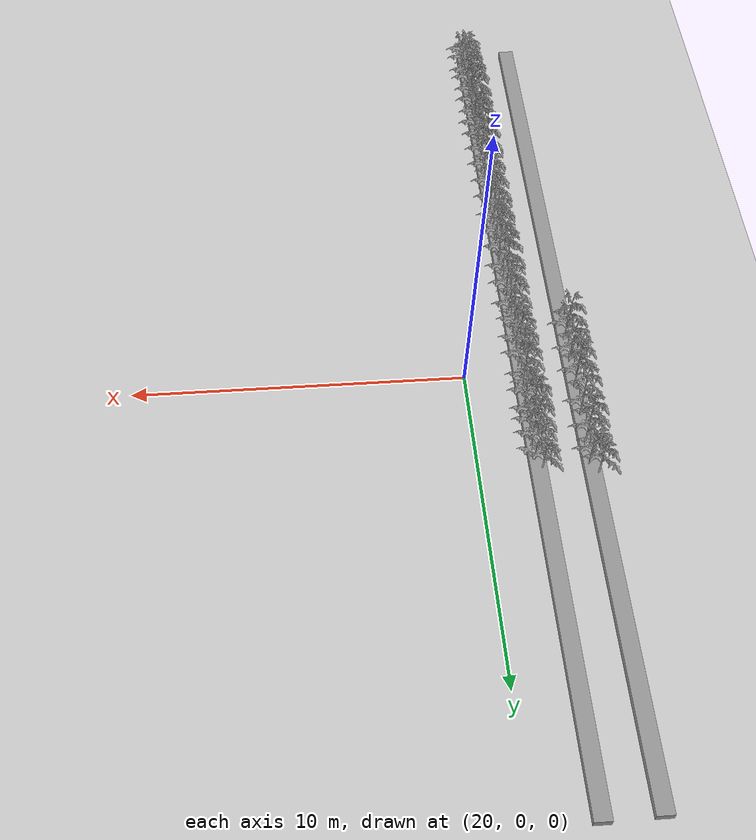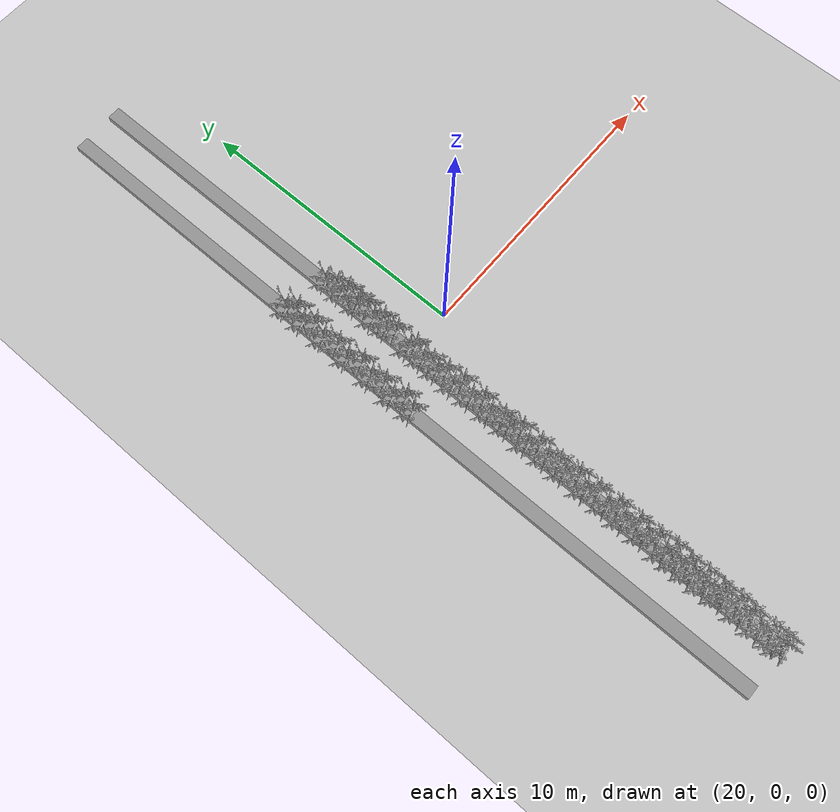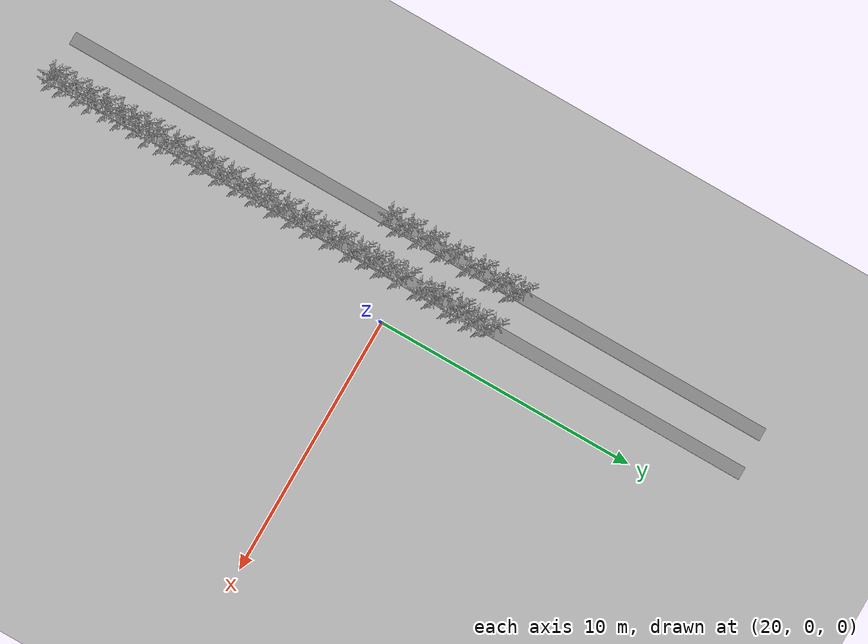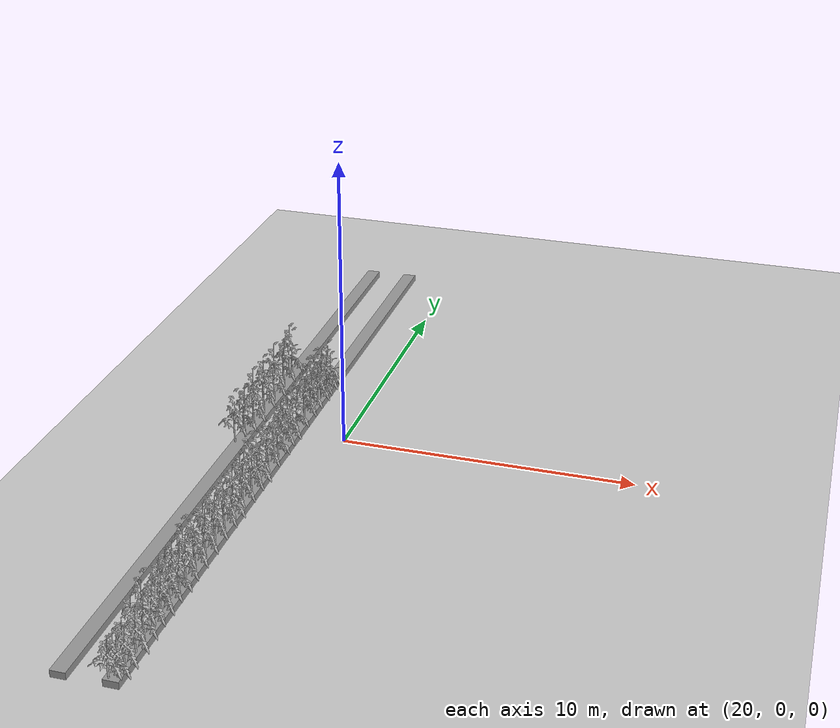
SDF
<sdf version="1.6">
 <world name="default">
  <model name="ground_plane">
   <static>1</static>
   <link name="link">
    <collision name="collision">
     <geometry><plane><normal>0 0 1</normal><size>100 100</size></plane></geometry>
     <surface>
      <contact><collide_bitmask>65535</collide_bitmask></contact>
      <friction><ode><mu>100</mu><mu2>50</mu2></ode></friction>
     </surface>
    </collision>
    <visual name="visual">
     <cast_shadows>0</cast_shadows>
     <geometry><plane><normal>0 0 1</normal><size>100 100</size></plane></geometry>
     <material>
      <script><uri>file://media/materials/scripts/gazebo.material</uri><name>Gazebo/Grey</name></script>
     </material>
    </visual>
   </link>
  </model>
  <model name="plant_base_clone_clone_0_clone">
   <link name="link">
    <inertial>
     <mass>1</mass>
     <inertia>
      <ixx>0.166667</ixx>
      <ixy>0</ixy>
      <ixz>0</ixz>
      <iyy>0.166667</iyy>
      <iyz>0</iyz>
      <izz>0.166667</izz>
     </inertia>
    </inertial>
    <visual name="visual">
     <geometry><box><size>0.484753 27.8593 0.235695</size></box></geometry>
     <material>
      <script><name>Gazebo/Grey</name><uri>file://media/materials/scripts/gazebo.material</uri></script>
     </material>
    </visual>
    <collision name="collision">
     <geometry><box><size>0.484753 27.8593 0.235695</size></box></geometry>
     <surface>
      <friction>
       <ode><mu>1</mu><mu2>1</mu2><fdir1>0 0 0</fdir1><slip1>0</slip1><slip2>0</slip2></ode>
       <torsional>
        <coefficient>1</coefficient>
        <patch_radius>0</patch_radius>
        <surface_radius>0</surface_radius>
        <use_patch_radius>1</use_patch_radius>
        <ode><slip>0</slip></ode>
       </torsional>
      </friction>
      <bounce><restitution_coefficient>0</restitution_coefficient><threshold>1e+06</threshold></bounce>
      <contact>
       <collide_without_contact>0</collide_without_contact>
       <collide_without_contact_bitmask>1</collide_without_contact_bitmask>
       <collide_bitmask>1</collide_bitmask>
       <ode>
        <soft_cfm>0</soft_cfm>
        <soft_erp>0.2</soft_erp>
        <kp>1e+13</kp>
        <kd>1</kd>
        <max_vel>0.01</max_vel>
        <min_depth>0</min_depth>
       </ode>
       <bullet>
        <split_impulse>1</split_impulse>
        <split_impulse_penetration_threshold>-0.01</split_impulse_penetration_threshold>
        <soft_cfm>0</soft_cfm>
        <soft_erp>0.2</soft_erp>
        <kp>1e+13</kp>
        <kd>1</kd>
       </bullet>
      </contact>
     </surface>
    </collision>
   </link>
   <static>1</static>
   <pose>16.7542 -0.411562 0.134309 0 -0 0</pose>
  </model>
  <model name="tomato_plant_big_28">
   <static>1</static>
   <link name="link">
    <collision name="collision">
     <geometry>
      <mesh><scale>5e-06 5e-06 6e-06</scale><uri>model://tomato_plant_big/meshes/tomato-plant.dae</uri></mesh>
     </geometry>
    </collision>
    <visual name="visual">
     <geometry>
      <mesh><scale>5e-06 5e-06 7e-06</scale><uri>model://tomato_plant_big/meshes/tomato-plant.dae</uri></mesh>
     </geometry>
    </visual>
   </link>
   <pose>16.6302 3.69515 0 0 -0 0</pose>
  </model>
  <model name="tomato_plant_big_29">
   <static>1</static>
   <link name="link">
    <collision name="collision">
     <geometry>
      <mesh><scale>5e-06 5e-06 6e-06</scale><uri>model://tomato_plant_big/meshes/tomato-plant.dae</uri></mesh>
     </geometry>
    </collision>
    <visual name="visual">
     <geometry>
      <mesh><scale>5e-06 5e-06 7e-06</scale><uri>model://tomato_plant_big/meshes/tomato-plant.dae</uri></mesh>
     </geometry>
    </visual>
   </link>
   <pose>16.8595 3.39617 0 0 -0 0</pose>
  </model>
  <model name="tomato_plant_medium_28">
   <static>1</static>
   <link name="link">
    <collision name="collision">
     <geometry>
      <mesh><scale>5e-06 5e-06 6e-06</scale><uri>model://tomato_plant_medium/meshes/tomato-plant.dae</uri></mesh>
     </geometry>
    </collision>
    <visual name="visual">
     <geometry>
      <mesh><scale>5e-06 5e-06 6e-06</scale><uri>model://tomato_plant_medium/meshes/tomato-plant.dae</uri></mesh>
     </geometry>
    </visual>
   </link>
   <pose>16.6557 3.03767 0 0 -0 0</pose>
  </model>
  <model name="tomato_plant_big_30">
   <static>1</static>
   <link name="link">
    <collision name="collision">
     <geometry>
      <mesh><scale>5e-06 5e-06 6e-06</scale><uri>model://tomato_plant_big/meshes/tomato-plant.dae</uri></mesh>
     </geometry>
    </collision>
    <visual name="visual">
     <geometry>
      <mesh><scale>5e-06 5e-06 7e-06</scale><uri>model://tomato_plant_big/meshes/tomato-plant.dae</uri></mesh>
     </geometry>
    </visual>
   </link>
   <pose>16.8343 2.6317 0 0 -0 0</pose>
  </model>
  <model name="tomato_plant_big_31">
   <static>1</static>
   <link name="link">
    <collision name="collision">
     <geometry>
      <mesh><scale>5e-06 5e-06 6e-06</scale><uri>model://tomato_plant_big/meshes/tomato-plant.dae</uri></mesh>
     </geometry>
    </collision>
    <visual name="visual">
     <geometry>
      <mesh><scale>5e-06 5e-06 7e-06</scale><uri>model://tomato_plant_big/meshes/tomato-plant.dae</uri></mesh>
     </geometry>
    </visual>
   </link>
   <pose>16.6389 2.11003 0 0 -0 0</pose>
  </model>
  <model name="tomato_plant_medium_29">
   <static>1</static>
   <link name="link">
    <collision name="collision">
     <geometry>
      <mesh><scale>5e-06 5e-06 6e-06</scale><uri>model://tomato_plant_medium/meshes/tomato-plant.dae</uri></mesh>
     </geometry>
    </collision>
    <visual name="visual">
     <geometry>
      <mesh><scale>5e-06 5e-06 6e-06</scale><uri>model://tomato_plant_medium/meshes/tomato-plant.dae</uri></mesh>
     </geometry>
    </visual>
   </link>
   <pose>16.8288 1.66908 0 0 -0 0</pose>
  </model>
  <model name="tomato_plant_big_32">
   <static>1</static>
   <link name="link">
    <collision name="collision">
     <geometry>
      <mesh><scale>5e-06 5e-06 6e-06</scale><uri>model://tomato_plant_big/meshes/tomato-plant.dae</uri></mesh>
     </geometry>
    </collision>
    <visual name="visual">
     <geometry>
      <mesh><scale>5e-06 5e-06 7e-06</scale><uri>model://tomato_plant_big/meshes/tomato-plant.dae</uri></mesh>
     </geometry>
    </visual>
   </link>
   <pose>16.6395 1.11249 0 0 -0 0</pose>
  </model>
  <model name="tomato_plant_big_33">
   <static>1</static>
   <link name="link">
    <collision name="collision">
     <geometry>
      <mesh><scale>5e-06 5e-06 6e-06</scale><uri>model://tomato_plant_big/meshes/tomato-plant.dae</uri></mesh>
     </geometry>
    </collision>
    <visual name="visual">
     <geometry>
      <mesh><scale>5e-06 5e-06 7e-06</scale><uri>model://tomato_plant_big/meshes/tomato-plant.dae</uri></mesh>
     </geometry>
    </visual>
   </link>
   <pose>16.8267 0.645431 0 0 -0 0</pose>
  </model>
  <model name="tomato_plant_big_34">
   <static>1</static>
   <link name="link">
    <collision name="collision">
     <geometry>
      <mesh><scale>5e-06 5e-06 6e-06</scale><uri>model://tomato_plant_big/meshes/tomato-plant.dae</uri></mesh>
     </geometry>
    </collision>
    <visual name="visual">
     <geometry>
      <mesh><scale>5e-06 5e-06 7e-06</scale><uri>model://tomato_plant_big/meshes/tomato-plant.dae</uri></mesh>
     </geometry>
    </visual>
   </link>
   <pose>16.636 0.127232 0 0 -0 0</pose>
  </model>
  <model name="tomato_plant_medium_30">
   <static>1</static>
   <link name="link">
    <collision name="collision">
     <geometry>
      <mesh><scale>5e-06 5e-06 6e-06</scale><uri>model://tomato_plant_medium/meshes/tomato-plant.dae</uri></mesh>
     </geometry>
    </collision>
    <visual name="visual">
     <geometry>
      <mesh><scale>5e-06 5e-06 6e-06</scale><uri>model://tomato_plant_medium/meshes/tomato-plant.dae</uri></mesh>
     </geometry>
    </visual>
   </link>
   <pose>16.8214 -0.274519 0 0 -0 0</pose>
  </model>
  <model name="tomato_plant_medium_31">
   <static>1</static>
   <link name="link">
    <collision name="collision">
     <geometry>
      <mesh><scale>5e-06 5e-06 6e-06</scale><uri>model://tomato_plant_medium/meshes/tomato-plant.dae</uri></mesh>
     </geometry>
    </collision>
    <visual name="visual">
     <geometry>
      <mesh><scale>5e-06 5e-06 6e-06</scale><uri>model://tomato_plant_medium/meshes/tomato-plant.dae</uri></mesh>
     </geometry>
    </visual>
   </link>
   <pose>16.6311 -0.74991 0 0 -0 0</pose>
  </model>
  <model name="tomato_plant_big_35">
   <static>1</static>
   <link name="link">
    <collision name="collision">
     <geometry>
      <mesh><scale>5e-06 5e-06 6e-06</scale><uri>model://tomato_plant_big/meshes/tomato-plant.dae</uri></mesh>
     </geometry>
    </collision>
    <visual name="visual">
     <geometry>
      <mesh><scale>5e-06 5e-06 7e-06</scale><uri>model://tomato_plant_big/meshes/tomato-plant.dae</uri></mesh>
     </geometry>
    </visual>
   </link>
   <pose>16.8316 -1.12586 0 0 -0 0</pose>
  </model>
  <model name="tomato_plant_big_36">
   <static>1</static>
   <link name="link">
    <collision name="collision">
     <geometry>
      <mesh><scale>5e-06 5e-06 6e-06</scale><uri>model://tomato_plant_big/meshes/tomato-plant.dae</uri></mesh>
     </geometry>
    </collision>
    <visual name="visual">
     <geometry>
      <mesh><scale>5e-06 5e-06 7e-06</scale><uri>model://tomato_plant_big/meshes/tomato-plant.dae</uri></mesh>
     </geometry>
    </visual>
   </link>
   <pose>16.6424 -1.55478 0 0 -0 0</pose>
  </model>
  <model name="plant_base_clone_clone_0_clone_clone">
   <link name="link">
    <inertial>
     <mass>1</mass>
     <inertia>
      <ixx>0.166667</ixx>
      <ixy>0</ixy>
      <ixz>0</ixz>
      <iyy>0.166667</iyy>
      <iyz>0</iyz>
      <izz>0.166667</izz>
     </inertia>
    </inertial>
    <visual name="visual">
     <geometry><box><size>0.484753 27.8593 0.235695</size></box></geometry>
     <material>
      <script><name>Gazebo/Grey</name><uri>file://media/materials/scripts/gazebo.material</uri></script>
     </material>
    </visual>
    <collision name="collision">
     <geometry><box><size>0.484753 27.8593 0.235695</size></box></geometry>
     <surface>
      <friction>
       <ode><mu>1</mu><mu2>1</mu2><fdir1>0 0 0</fdir1><slip1>0</slip1><slip2>0</slip2></ode>
       <torsional>
        <coefficient>1</coefficient>
        <patch_radius>0</patch_radius>
        <surface_radius>0</surface_radius>
        <use_patch_radius>1</use_patch_radius>
        <ode><slip>0</slip></ode>
       </torsional>
      </friction>
      <bounce><restitution_coefficient>0</restitution_coefficient><threshold>1e+06</threshold></bounce>
      <contact>
       <collide_without_contact>0</collide_without_contact>
       <collide_without_contact_bitmask>1</collide_without_contact_bitmask>
       <collide_bitmask>1</collide_bitmask>
       <ode>
        <soft_cfm>0</soft_cfm>
        <soft_erp>0.2</soft_erp>
        <kp>1e+13</kp>
        <kd>1</kd>
        <max_vel>0.01</max_vel>
        <min_depth>0</min_depth>
       </ode>
       <bullet>
        <split_impulse>1</split_impulse>
        <split_impulse_penetration_threshold>-0.01</split_impulse_penetration_threshold>
        <soft_cfm>0</soft_cfm>
        <soft_erp>0.2</soft_erp>
        <kp>1e+13</kp>
        <kd>1</kd>
       </bullet>
      </contact>
     </surface>
    </collision>
   </link>
   <static>1</static>
   <pose>18.2947 -0.361854 0.134309 0 -0 0</pose>
  </model>
  <model name="tomato_plant_medium_36">
   <static>1</static>
   <link name="link">
    <collision name="collision">
     <geometry>
      <mesh><scale>5e-06 5e-06 6e-06</scale><uri>model://tomato_plant_medium/meshes/tomato-plant.dae</uri></mesh>
     </geometry>
    </collision>
    <visual name="visual">
     <geometry>
      <mesh><scale>5e-06 5e-06 6e-06</scale><uri>model://tomato_plant_medium/meshes/tomato-plant.dae</uri></mesh>
     </geometry>
    </visual>
   </link>
   <pose>18.203 3.43071 0 0 -0 0</pose>
  </model>
  <model name="tomato_plant_small_12">
   <static>1</static>
   <link name="link">
    <collision name="collision">
     <geometry>
      <mesh><scale>5e-06 5e-06 5e-06</scale><uri>model://tomato_plant_small/meshes/tomato-plant.dae</uri></mesh>
     </geometry>
    </collision>
    <visual name="visual">
     <geometry>
      <mesh><scale>5e-06 5e-06 5e-06</scale><uri>model://tomato_plant_small/meshes/tomato-plant.dae</uri></mesh>
     </geometry>
    </visual>
   </link>
   <pose>18.3881 3.14602 0 0 -0 0</pose>
  </model>
  <model name="tomato_plant_medium_37">
   <static>1</static>
   <link name="link">
    <collision name="collision">
     <geometry>
      <mesh><scale>5e-06 5e-06 6e-06</scale><uri>model://tomato_plant_medium/meshes/tomato-plant.dae</uri></mesh>
     </geometry>
    </collision>
    <visual name="visual">
     <geometry>
      <mesh><scale>5e-06 5e-06 6e-06</scale><uri>model://tomato_plant_medium/meshes/tomato-plant.dae</uri></mesh>
     </geometry>
    </visual>
   </link>
   <pose>18.2039 2.78617 0 0 -0 0</pose>
  </model>
  <model name="tomato_plant_medium_38">
   <static>1</static>
   <link name="link">
    <collision name="collision">
     <geometry>
      <mesh><scale>5e-06 5e-06 6e-06</scale><uri>model://tomato_plant_medium/meshes/tomato-plant.dae</uri></mesh>
     </geometry>
    </collision>
    <visual name="visual">
     <geometry>
      <mesh><scale>5e-06 5e-06 6e-06</scale><uri>model://tomato_plant_medium/meshes/tomato-plant.dae</uri></mesh>
     </geometry>
    </visual>
   </link>
   <pose>18.4156 2.66617 0 0 -0 0</pose>
  </model>
  <model name="tomato_plant_big_39">
   <static>1</static>
   <link name="link">
    <collision name="collision">
     <geometry>
      <mesh><scale>5e-06 5e-06 6e-06</scale><uri>model://tomato_plant_big/meshes/tomato-plant.dae</uri></mesh>
     </geometry>
    </collision>
    <visual name="visual">
     <geometry>
      <mesh><scale>5e-06 5e-06 7e-06</scale><uri>model://tomato_plant_big/meshes/tomato-plant.dae</uri></mesh>
     </geometry>
    </visual>
   </link>
   <pose>18.1812 2.07186 0 0 -0 0</pose>
  </model>
  <model name="tomato_plant_medium_39">
   <static>1</static>
   <link name="link">
    <collision name="collision">
     <geometry>
      <mesh><scale>5e-06 5e-06 6e-06</scale><uri>model://tomato_plant_medium/meshes/tomato-plant.dae</uri></mesh>
     </geometry>
    </collision>
    <visual name="visual">
     <geometry>
      <mesh><scale>5e-06 5e-06 6e-06</scale><uri>model://tomato_plant_medium/meshes/tomato-plant.dae</uri></mesh>
     </geometry>
    </visual>
   </link>
   <pose>18.3933 2.19028 0 0 -0 0</pose>
  </model>
  <model name="tomato_plant_medium_40">
   <static>1</static>
   <link name="link">
    <collision name="collision">
     <geometry>
      <mesh><scale>5e-06 5e-06 6e-06</scale><uri>model://tomato_plant_medium/meshes/tomato-plant.dae</uri></mesh>
     </geometry>
    </collision>
    <visual name="visual">
     <geometry>
      <mesh><scale>5e-06 5e-06 6e-06</scale><uri>model://tomato_plant_medium/meshes/tomato-plant.dae</uri></mesh>
     </geometry>
    </visual>
   </link>
   <pose>18.4111 1.81347 0 0 -0 0</pose>
  </model>
  <model name="tomato_plant_big_40">
   <static>1</static>
   <link name="link">
    <collision name="collision">
     <geometry>
      <mesh><scale>5e-06 5e-06 6e-06</scale><uri>model://tomato_plant_big/meshes/tomato-plant.dae</uri></mesh>
     </geometry>
    </collision>
    <visual name="visual">
     <geometry>
      <mesh><scale>5e-06 5e-06 7e-06</scale><uri>model://tomato_plant_big/meshes/tomato-plant.dae</uri></mesh>
     </geometry>
    </visual>
   </link>
   <pose>18.1522 1.36288 0 0 -0 0</pose>
  </model>
  <model name="tomato_plant_medium_41">
   <static>1</static>
   <link name="link">
    <collision name="collision">
     <geometry>
      <mesh><scale>5e-06 5e-06 6e-06</scale><uri>model://tomato_plant_medium/meshes/tomato-plant.dae</uri></mesh>
     </geometry>
    </collision>
    <visual name="visual">
     <geometry>
      <mesh><scale>5e-06 5e-06 6e-06</scale><uri>model://tomato_plant_medium/meshes/tomato-plant.dae</uri></mesh>
     </geometry>
    </visual>
   </link>
   <pose>18.3908 1.1661 0 0 -0 0</pose>
  </model>
  <model name="tomato_plant_medium_42">
   <static>1</static>
   <link name="link">
    <collision name="collision">
     <geometry>
      <mesh><scale>5e-06 5e-06 6e-06</scale><uri>model://tomato_plant_medium/meshes/tomato-plant.dae</uri></mesh>
     </geometry>
    </collision>
    <visual name="visual">
     <geometry>
      <mesh><scale>5e-06 5e-06 6e-06</scale><uri>model://tomato_plant_medium/meshes/tomato-plant.dae</uri></mesh>
     </geometry>
    </visual>
   </link>
   <pose>18.2419 0.881435 0 0 -0 0</pose>
  </model>
  <model name="tomato_plant_medium_43">
   <static>1</static>
   <link name="link">
    <collision name="collision">
     <geometry>
      <mesh><scale>5e-06 5e-06 6e-06</scale><uri>model://tomato_plant_medium/meshes/tomato-plant.dae</uri></mesh>
     </geometry>
    </collision>
    <visual name="visual">
     <geometry>
      <mesh><scale>5e-06 5e-06 6e-06</scale><uri>model://tomato_plant_medium/meshes/tomato-plant.dae</uri></mesh>
     </geometry>
    </visual>
   </link>
   <pose>18.3636 0.581403 0 0 -0 0</pose>
  </model>
  <model name="tomato_plant_medium_44">
   <static>1</static>
   <link name="link">
    <collision name="collision">
     <geometry>
      <mesh><scale>5e-06 5e-06 6e-06</scale><uri>model://tomato_plant_medium/meshes/tomato-plant.dae</uri></mesh>
     </geometry>
    </collision>
    <visual name="visual">
     <geometry>
      <mesh><scale>5e-06 5e-06 6e-06</scale><uri>model://tomato_plant_medium/meshes/tomato-plant.dae</uri></mesh>
     </geometry>
    </visual>
   </link>
   <pose>18.1724 -0.08934 0 0 -0 0</pose>
  </model>
  <model name="tomato_plant_medium_45">
   <static>1</static>
   <link name="link">
    <collision name="collision">
     <geometry>
      <mesh><scale>5e-06 5e-06 6e-06</scale><uri>model://tomato_plant_medium/meshes/tomato-plant.dae</uri></mesh>
     </geometry>
    </collision>
    <visual name="visual">
     <geometry>
      <mesh><scale>5e-06 5e-06 6e-06</scale><uri>model://tomato_plant_medium/meshes/tomato-plant.dae</uri></mesh>
     </geometry>
    </visual>
   </link>
   <pose>18.3746 -0.203796 0 0 -0 0</pose>
  </model>
  <model name="tomato_plant_medium_46">
   <static>1</static>
   <link name="link">
    <collision name="collision">
     <geometry>
      <mesh><scale>5e-06 5e-06 6e-06</scale><uri>model://tomato_plant_medium/meshes/tomato-plant.dae</uri></mesh>
     </geometry>
    </collision>
    <visual name="visual">
     <geometry>
      <mesh><scale>5e-06 5e-06 6e-06</scale><uri>model://tomato_plant_medium/meshes/tomato-plant.dae</uri></mesh>
     </geometry>
    </visual>
   </link>
   <pose>18.1923 -0.664019 0 0 -0 0</pose>
  </model>
  <model name="tomato_plant_small_13">
   <static>1</static>
   <link name="link">
    <collision name="collision">
     <geometry>
      <mesh><scale>5e-06 5e-06 5e-06</scale><uri>model://tomato_plant_small/meshes/tomato-plant.dae</uri></mesh>
     </geometry>
    </collision>
    <visual name="visual">
     <geometry>
      <mesh><scale>5e-06 5e-06 5e-06</scale><uri>model://tomato_plant_small/meshes/tomato-plant.dae</uri></mesh>
     </geometry>
    </visual>
   </link>
   <pose>18.3563 -0.904807 0 0 -0 0</pose>
  </model>
  <model name="tomato_plant_medium_47">
   <static>1</static>
   <link name="link">
    <collision name="collision">
     <geometry>
      <mesh><scale>5e-06 5e-06 6e-06</scale><uri>model://tomato_plant_medium/meshes/tomato-plant.dae</uri></mesh>
     </geometry>
    </collision>
    <visual name="visual">
     <geometry>
      <mesh><scale>5e-06 5e-06 6e-06</scale><uri>model://tomato_plant_medium/meshes/tomato-plant.dae</uri></mesh>
     </geometry>
    </visual>
   </link>
   <pose>18.1771 -1.24651 0 0 -0 0</pose>
  </model>
  <model name="tomato_plant_medium_48">
   <static>1</static>
   <link name="link">
    <collision name="collision">
     <geometry>
      <mesh><scale>5e-06 5e-06 6e-06</scale><uri>model://tomato_plant_medium/meshes/tomato-plant.dae</uri></mesh>
     </geometry>
    </collision>
    <visual name="visual">
     <geometry>
      <mesh><scale>5e-06 5e-06 6e-06</scale><uri>model://tomato_plant_medium/meshes/tomato-plant.dae</uri></mesh>
     </geometry>
    </visual>
   </link>
   <pose>18.3478 -1.51642 0 0 -0 0</pose>
  </model>
  <model name="tomato_plant_small_14">
   <static>1</static>
   <link name="link">
    <collision name="collision">
     <geometry>
      <mesh><scale>5e-06 5e-06 5e-06</scale><uri>model://tomato_plant_small/meshes/tomato-plant.dae</uri></mesh>
     </geometry>
    </collision>
    <visual name="visual">
     <geometry>
      <mesh><scale>5e-06 5e-06 5e-06</scale><uri>model://tomato_plant_small/meshes/tomato-plant.dae</uri></mesh>
     </geometry>
    </visual>
   </link>
   <pose>18.1795 -1.89966 0 0 -0 0</pose>
  </model>
  <model name="tomato_plant_medium_49">
   <static>1</static>
   <link name="link">
    <collision name="collision">
     <geometry>
      <mesh><scale>5e-06 5e-06 6e-06</scale><uri>model://tomato_plant_medium/meshes/tomato-plant.dae</uri></mesh>
     </geometry>
    </collision>
    <visual name="visual">
     <geometry>
      <mesh><scale>5e-06 5e-06 6e-06</scale><uri>model://tomato_plant_medium/meshes/tomato-plant.dae</uri></mesh>
     </geometry>
    </visual>
   </link>
   <pose>18.4115 -2.1167 0 0 -0 0</pose>
  </model>
  <model name="tomato_plant_medium_50">
   <static>1</static>
   <link name="link">
    <collision name="collision">
     <geometry>
      <mesh><scale>5e-06 5e-06 6e-06</scale><uri>model://tomato_plant_medium/meshes/tomato-plant.dae</uri></mesh>
     </geometry>
    </collision>
    <visual name="visual">
     <geometry>
      <mesh><scale>5e-06 5e-06 6e-06</scale><uri>model://tomato_plant_medium/meshes/tomato-plant.dae</uri></mesh>
     </geometry>
    </visual>
   </link>
   <pose>18.187 -2.61324 0 0 -0 0</pose>
  </model>
  <model name="tomato_plant_medium_51">
   <static>1</static>
   <link name="link">
    <collision name="collision">
     <geometry>
      <mesh><scale>5e-06 5e-06 6e-06</scale><uri>model://tomato_plant_medium/meshes/tomato-plant.dae</uri></mesh>
     </geometry>
    </collision>
    <visual name="visual">
     <geometry>
      <mesh><scale>5e-06 5e-06 6e-06</scale><uri>model://tomato_plant_medium/meshes/tomato-plant.dae</uri></mesh>
     </geometry>
    </visual>
   </link>
   <pose>18.3839 -2.95565 0 0 -0 0</pose>
  </model>
  <model name="tomato_plant_medium_52">
   <static>1</static>
   <link name="link">
    <collision name="collision">
     <geometry>
      <mesh><scale>5e-06 5e-06 6e-06</scale><uri>model://tomato_plant_medium/meshes/tomato-plant.dae</uri></mesh>
     </geometry>
    </collision>
    <visual name="visual">
     <geometry>
      <mesh><scale>5e-06 5e-06 6e-06</scale><uri>model://tomato_plant_medium/meshes/tomato-plant.dae</uri></mesh>
     </geometry>
    </visual>
   </link>
   <pose>18.1875 -3.37366 0 0 -0 0</pose>
  </model>
  <model name="tomato_plant_small_15">
   <static>1</static>
   <link name="link">
    <collision name="collision">
     <geometry>
      <mesh><scale>5e-06 5e-06 5e-06</scale><uri>model://tomato_plant_small/meshes/tomato-plant.dae</uri></mesh>
     </geometry>
    </collision>
    <visual name="visual">
     <geometry>
      <mesh><scale>5e-06 5e-06 5e-06</scale><uri>model://tomato_plant_small/meshes/tomato-plant.dae</uri></mesh>
     </geometry>
    </visual>
   </link>
   <pose>18.3812 -3.75382 0 0 -0 0</pose>
  </model>
  <model name="tomato_plant_big_41">
   <static>1</static>
   <link name="link">
    <collision name="collision">
     <geometry>
      <mesh><scale>5e-06 5e-06 6e-06</scale><uri>model://tomato_plant_big/meshes/tomato-plant.dae</uri></mesh>
     </geometry>
    </collision>
    <visual name="visual">
     <geometry>
      <mesh><scale>5e-06 5e-06 7e-06</scale><uri>model://tomato_plant_big/meshes/tomato-plant.dae</uri></mesh>
     </geometry>
    </visual>
   </link>
   <pose>18.1765 -4.09846 0 0 -0 0</pose>
  </model>
  <model name="tomato_plant_medium_53">
   <static>1</static>
   <link name="link">
    <collision name="collision">
     <geometry>
      <mesh><scale>5e-06 5e-06 6e-06</scale><uri>model://tomato_plant_medium/meshes/tomato-plant.dae</uri></mesh>
     </geometry>
    </collision>
    <visual name="visual">
     <geometry>
      <mesh><scale>5e-06 5e-06 6e-06</scale><uri>model://tomato_plant_medium/meshes/tomato-plant.dae</uri></mesh>
     </geometry>
    </visual>
   </link>
   <pose>18.4013 -4.45258 0 0 -0 0</pose>
  </model>
  <model name="tomato_plant_medium_54">
   <static>1</static>
   <link name="link">
    <collision name="collision">
     <geometry>
      <mesh><scale>5e-06 5e-06 6e-06</scale><uri>model://tomato_plant_medium/meshes/tomato-plant.dae</uri></mesh>
     </geometry>
    </collision>
    <visual name="visual">
     <geometry>
      <mesh><scale>5e-06 5e-06 6e-06</scale><uri>model://tomato_plant_medium/meshes/tomato-plant.dae</uri></mesh>
     </geometry>
    </visual>
   </link>
   <pose>18.1616 -4.84131 0 0 -0 0</pose>
  </model>
  <model name="tomato_plant_medium_55">
   <static>1</static>
   <link name="link">
    <collision name="collision">
     <geometry>
      <mesh><scale>5e-06 5e-06 6e-06</scale><uri>model://tomato_plant_medium/meshes/tomato-plant.dae</uri></mesh>
     </geometry>
    </collision>
    <visual name="visual">
     <geometry>
      <mesh><scale>5e-06 5e-06 6e-06</scale><uri>model://tomato_plant_medium/meshes/tomato-plant.dae</uri></mesh>
     </geometry>
    </visual>
   </link>
   <pose>18.3872 -5.16005 0 0 -0 0</pose>
  </model>
  <model name="tomato_plant_medium_56">
   <static>1</static>
   <link name="link">
    <collision name="collision">
     <geometry>
      <mesh><scale>5e-06 5e-06 6e-06</scale><uri>model://tomato_plant_medium/meshes/tomato-plant.dae</uri></mesh>
     </geometry>
    </collision>
    <visual name="visual">
     <geometry>
      <mesh><scale>5e-06 5e-06 6e-06</scale><uri>model://tomato_plant_medium/meshes/tomato-plant.dae</uri></mesh>
     </geometry>
    </visual>
   </link>
   <pose>18.1986 -5.57139 0 0 -0 0</pose>
  </model>
  <model name="tomato_plant_small_16">
   <static>1</static>
   <link name="link">
    <collision name="collision">
     <geometry>
      <mesh><scale>5e-06 5e-06 5e-06</scale><uri>model://tomato_plant_small/meshes/tomato-plant.dae</uri></mesh>
     </geometry>
    </collision>
    <visual name="visual">
     <geometry>
      <mesh><scale>5e-06 5e-06 5e-06</scale><uri>model://tomato_plant_small/meshes/tomato-plant.dae</uri></mesh>
     </geometry>
    </visual>
   </link>
   <pose>18.3716 -5.95526 0 0 -0 0</pose>
  </model>
  <model name="tomato_plant_medium_57">
   <static>1</static>
   <link name="link">
    <collision name="collision">
     <geometry>
      <mesh><scale>5e-06 5e-06 6e-06</scale><uri>model://tomato_plant_medium/meshes/tomato-plant.dae</uri></mesh>
     </geometry>
    </collision>
    <visual name="visual">
     <geometry>
      <mesh><scale>5e-06 5e-06 6e-06</scale><uri>model://tomato_plant_medium/meshes/tomato-plant.dae</uri></mesh>
     </geometry>
    </visual>
   </link>
   <pose>18.1874 -6.24858 0 0 -0 0</pose>
  </model>
  <model name="tomato_plant_medium_58">
   <static>1</static>
   <link name="link">
    <collision name="collision">
     <geometry>
      <mesh><scale>5e-06 5e-06 6e-06</scale><uri>model://tomato_plant_medium/meshes/tomato-plant.dae</uri></mesh>
     </geometry>
    </collision>
    <visual name="visual">
     <geometry>
      <mesh><scale>5e-06 5e-06 6e-06</scale><uri>model://tomato_plant_medium/meshes/tomato-plant.dae</uri></mesh>
     </geometry>
    </visual>
   </link>
   <pose>18.3864 -6.65812 0 0 -0 0</pose>
  </model>
  <model name="tomato_plant_medium_59">
   <static>1</static>
   <link name="link">
    <collision name="collision">
     <geometry>
      <mesh><scale>5e-06 5e-06 6e-06</scale><uri>model://tomato_plant_medium/meshes/tomato-plant.dae</uri></mesh>
     </geometry>
    </collision>
    <visual name="visual">
     <geometry>
      <mesh><scale>5e-06 5e-06 6e-06</scale><uri>model://tomato_plant_medium/meshes/tomato-plant.dae</uri></mesh>
     </geometry>
    </visual>
   </link>
   <pose>18.1717 -7.06619 0 0 -0 0</pose>
  </model>
  <model name="tomato_plant_medium_60">
   <static>1</static>
   <link name="link">
    <collision name="collision">
     <geometry>
      <mesh><scale>5e-06 5e-06 6e-06</scale><uri>model://tomato_plant_medium/meshes/tomato-plant.dae</uri></mesh>
     </geometry>
    </collision>
    <visual name="visual">
     <geometry>
      <mesh><scale>5e-06 5e-06 6e-06</scale><uri>model://tomato_plant_medium/meshes/tomato-plant.dae</uri></mesh>
     </geometry>
    </visual>
   </link>
   <pose>18.3824 -7.38035 0 0 -0 0</pose>
  </model>
  <model name="tomato_plant_medium_61">
   <static>1</static>
   <link name="link">
    <collision name="collision">
     <geometry>
      <mesh><scale>5e-06 5e-06 6e-06</scale><uri>model://tomato_plant_medium/meshes/tomato-plant.dae</uri></mesh>
     </geometry>
    </collision>
    <visual name="visual">
     <geometry>
      <mesh><scale>5e-06 5e-06 6e-06</scale><uri>model://tomato_plant_medium/meshes/tomato-plant.dae</uri></mesh>
     </geometry>
    </visual>
   </link>
   <pose>18.1994 -7.83506 0 0 -0 0</pose>
  </model>
  <model name="tomato_plant_medium_62">
   <static>1</static>
   <link name="link">
    <collision name="collision">
     <geometry>
      <mesh><scale>5e-06 5e-06 6e-06</scale><uri>model://tomato_plant_medium/meshes/tomato-plant.dae</uri></mesh>
     </geometry>
    </collision>
    <visual name="visual">
     <geometry>
      <mesh><scale>5e-06 5e-06 6e-06</scale><uri>model://tomato_plant_medium/meshes/tomato-plant.dae</uri></mesh>
     </geometry>
    </visual>
   </link>
   <pose>18.4013 -8.15736 0 0 -0 0</pose>
  </model>
  <model name="tomato_plant_medium_63">
   <static>1</static>
   <link name="link">
    <collision name="collision">
     <geometry>
      <mesh><scale>5e-06 5e-06 6e-06</scale><uri>model://tomato_plant_medium/meshes/tomato-plant.dae</uri></mesh>
     </geometry>
    </collision>
    <visual name="visual">
     <geometry>
      <mesh><scale>5e-06 5e-06 6e-06</scale><uri>model://tomato_plant_medium/meshes/tomato-plant.dae</uri></mesh>
     </geometry>
    </visual>
   </link>
   <pose>18.1757 -8.48595 0 0 -0 0</pose>
  </model>
  <model name="tomato_plant_medium_64">
   <static>1</static>
   <link name="link">
    <collision name="collision">
     <geometry>
      <mesh><scale>5e-06 5e-06 6e-06</scale><uri>model://tomato_plant_medium/meshes/tomato-plant.dae</uri></mesh>
     </geometry>
    </collision>
    <visual name="visual">
     <geometry>
      <mesh><scale>5e-06 5e-06 6e-06</scale><uri>model://tomato_plant_medium/meshes/tomato-plant.dae</uri></mesh>
     </geometry>
    </visual>
   </link>
   <pose>18.3962 -8.89016 0 0 -0 0</pose>
  </model>
  <model name="tomato_plant_big_42">
   <static>1</static>
   <link name="link">
    <collision name="collision">
     <geometry>
      <mesh><scale>5e-06 5e-06 6e-06</scale><uri>model://tomato_plant_big/meshes/tomato-plant.dae</uri></mesh>
     </geometry>
    </collision>
    <visual name="visual">
     <geometry>
      <mesh><scale>5e-06 5e-06 7e-06</scale><uri>model://tomato_plant_big/meshes/tomato-plant.dae</uri></mesh>
     </geometry>
    </visual>
   </link>
   <pose>18.1735 -9.2315 0 0 -0 0</pose>
  </model>
  <model name="tomato_plant_medium_65">
   <static>1</static>
   <link name="link">
    <collision name="collision">
     <geometry>
      <mesh><scale>5e-06 5e-06 6e-06</scale><uri>model://tomato_plant_medium/meshes/tomato-plant.dae</uri></mesh>
     </geometry>
    </collision>
    <visual name="visual">
     <geometry>
      <mesh><scale>5e-06 5e-06 6e-06</scale><uri>model://tomato_plant_medium/meshes/tomato-plant.dae</uri></mesh>
     </geometry>
    </visual>
   </link>
   <pose>18.4084 -9.59475 0 0 -0 0</pose>
  </model>
  <model name="tomato_plant_medium_66">
   <static>1</static>
   <link name="link">
    <collision name="collision">
     <geometry>
      <mesh><scale>5e-06 5e-06 6e-06</scale><uri>model://tomato_plant_medium/meshes/tomato-plant.dae</uri></mesh>
     </geometry>
    </collision>
    <visual name="visual">
     <geometry>
      <mesh><scale>5e-06 5e-06 6e-06</scale><uri>model://tomato_plant_medium/meshes/tomato-plant.dae</uri></mesh>
     </geometry>
    </visual>
   </link>
   <pose>18.1602 -9.99101 0 0 -0 0</pose>
  </model>
  <model name="tomato_plant_medium_67">
   <static>1</static>
   <link name="link">
    <collision name="collision">
     <geometry>
      <mesh><scale>5e-06 5e-06 6e-06</scale><uri>model://tomato_plant_medium/meshes/tomato-plant.dae</uri></mesh>
     </geometry>
    </collision>
    <visual name="visual">
     <geometry>
      <mesh><scale>5e-06 5e-06 6e-06</scale><uri>model://tomato_plant_medium/meshes/tomato-plant.dae</uri></mesh>
     </geometry>
    </visual>
   </link>
   <pose>18.4562 -10.1662 0 0 -0 0</pose>
  </model>
  <model name="tomato_plant_medium_68">
   <static>1</static>
   <link name="link">
    <collision name="collision">
     <geometry>
      <mesh><scale>5e-06 5e-06 6e-06</scale><uri>model://tomato_plant_medium/meshes/tomato-plant.dae</uri></mesh>
     </geometry>
    </collision>
    <visual name="visual">
     <geometry>
      <mesh><scale>5e-06 5e-06 6e-06</scale><uri>model://tomato_plant_medium/meshes/tomato-plant.dae</uri></mesh>
     </geometry>
    </visual>
   </link>
   <pose>18.1638 -10.4294 0 0 -0 0</pose>
  </model>
  <model name="tomato_plant_medium_69">
   <static>1</static>
   <link name="link">
    <collision name="collision">
     <geometry>
      <mesh><scale>5e-06 5e-06 6e-06</scale><uri>model://tomato_plant_medium/meshes/tomato-plant.dae</uri></mesh>
     </geometry>
    </collision>
    <visual name="visual">
     <geometry>
      <mesh><scale>5e-06 5e-06 6e-06</scale><uri>model://tomato_plant_medium/meshes/tomato-plant.dae</uri></mesh>
     </geometry>
    </visual>
   </link>
   <pose>18.3947 -10.7029 0 0 -0 0</pose>
  </model>
  <model name="tomato_plant_medium_70">
   <static>1</static>
   <link name="link">
    <collision name="collision">
     <geometry>
      <mesh><scale>5e-06 5e-06 6e-06</scale><uri>model://tomato_plant_medium/meshes/tomato-plant.dae</uri></mesh>
     </geometry>
    </collision>
    <visual name="visual">
     <geometry>
      <mesh><scale>5e-06 5e-06 6e-06</scale><uri>model://tomato_plant_medium/meshes/tomato-plant.dae</uri></mesh>
     </geometry>
    </visual>
   </link>
   <pose>18.1822 -10.9616 0 0 -0 0</pose>
  </model>
  <model name="tomato_plant_medium_71">
   <static>1</static>
   <link name="link">
    <collision name="collision">
     <geometry>
      <mesh><scale>5e-06 5e-06 6e-06</scale><uri>model://tomato_plant_medium/meshes/tomato-plant.dae</uri></mesh>
     </geometry>
    </collision>
    <visual name="visual">
     <geometry>
      <mesh><scale>5e-06 5e-06 6e-06</scale><uri>model://tomato_plant_medium/meshes/tomato-plant.dae</uri></mesh>
     </geometry>
    </visual>
   </link>
   <pose>18.4186 -11.3116 0 0 -0 0</pose>
  </model>
  <model name="tomato_plant_small_17">
   <static>1</static>
   <link name="link">
    <collision name="collision">
     <geometry>
      <mesh><scale>5e-06 5e-06 5e-06</scale><uri>model://tomato_plant_small/meshes/tomato-plant.dae</uri></mesh>
     </geometry>
    </collision>
    <visual name="visual">
     <geometry>
      <mesh><scale>5e-06 5e-06 5e-06</scale><uri>model://tomato_plant_small/meshes/tomato-plant.dae</uri></mesh>
     </geometry>
    </visual>
   </link>
   <pose>18.2049 -11.4926 0 0 -0 0</pose>
  </model>
  <model name="tomato_plant_medium_72">
   <static>1</static>
   <link name="link">
    <collision name="collision">
     <geometry>
      <mesh><scale>5e-06 5e-06 6e-06</scale><uri>model://tomato_plant_medium/meshes/tomato-plant.dae</uri></mesh>
     </geometry>
    </collision>
    <visual name="visual">
     <geometry>
      <mesh><scale>5e-06 5e-06 6e-06</scale><uri>model://tomato_plant_medium/meshes/tomato-plant.dae</uri></mesh>
     </geometry>
    </visual>
   </link>
   <pose>18.3913 -11.8513 0 0 -0 0</pose>
  </model>
  <model name="tomato_plant_big_43">
   <static>1</static>
   <link name="link">
    <collision name="collision">
     <geometry>
      <mesh><scale>5e-06 5e-06 6e-06</scale><uri>model://tomato_plant_big/meshes/tomato-plant.dae</uri></mesh>
     </geometry>
    </collision>
    <visual name="visual">
     <geometry>
      <mesh><scale>5e-06 5e-06 7e-06</scale><uri>model://tomato_plant_big/meshes/tomato-plant.dae</uri></mesh>
     </geometry>
    </visual>
   </link>
   <pose>18.1796 -12.019 0 0 -0 0</pose>
  </model>
  <model name="tomato_plant_medium_73">
   <static>1</static>
   <link name="link">
    <collision name="collision">
     <geometry>
      <mesh><scale>5e-06 5e-06 6e-06</scale><uri>model://tomato_plant_medium/meshes/tomato-plant.dae</uri></mesh>
     </geometry>
    </collision>
    <visual name="visual">
     <geometry>
      <mesh><scale>5e-06 5e-06 6e-06</scale><uri>model://tomato_plant_medium/meshes/tomato-plant.dae</uri></mesh>
     </geometry>
    </visual>
   </link>
   <pose>18.4297 -12.4591 0 0 -0 0</pose>
  </model>
  <model name="tomato_plant_medium_74">
   <static>1</static>
   <link name="link">
    <collision name="collision">
     <geometry>
      <mesh><scale>5e-06 5e-06 6e-06</scale><uri>model://tomato_plant_medium/meshes/tomato-plant.dae</uri></mesh>
     </geometry>
    </collision>
    <visual name="visual">
     <geometry>
      <mesh><scale>5e-06 5e-06 6e-06</scale><uri>model://tomato_plant_medium/meshes/tomato-plant.dae</uri></mesh>
     </geometry>
    </visual>
   </link>
   <pose>18.1947 -12.7246 0 0 -0 0</pose>
  </model>
  <model name="tomato_plant_small_18">
   <static>1</static>
   <link name="link">
    <collision name="collision">
     <geometry>
      <mesh><scale>5e-06 5e-06 5e-06</scale><uri>model://tomato_plant_small/meshes/tomato-plant.dae</uri></mesh>
     </geometry>
    </collision>
    <visual name="visual">
     <geometry>
      <mesh><scale>5e-06 5e-06 5e-06</scale><uri>model://tomato_plant_small/meshes/tomato-plant.dae</uri></mesh>
     </geometry>
    </visual>
   </link>
   <pose>18.4263 -12.9835 0 0 -0 0</pose>
  </model>
  <model name="tomato_plant_small_19">
   <static>1</static>
   <link name="link">
    <collision name="collision">
     <geometry>
      <mesh><scale>5e-06 5e-06 5e-06</scale><uri>model://tomato_plant_small/meshes/tomato-plant.dae</uri></mesh>
     </geometry>
    </collision>
    <visual name="visual">
     <geometry>
      <mesh><scale>5e-06 5e-06 5e-06</scale><uri>model://tomato_plant_small/meshes/tomato-plant.dae</uri></mesh>
     </geometry>
    </visual>
   </link>
   <pose>18.2077 -13.3568 0 0 -0 0</pose>
  </model>
  <model name="tomato_plant_small_20">
   <static>1</static>
   <link name="link">
    <collision name="collision">
     <geometry>
      <mesh><scale>5e-06 5e-06 5e-06</scale><uri>model://tomato_plant_small/meshes/tomato-plant.dae</uri></mesh>
     </geometry>
    </collision>
    <visual name="visual">
     <geometry>
      <mesh><scale>5e-06 5e-06 5e-06</scale><uri>model://tomato_plant_small/meshes/tomato-plant.dae</uri></mesh>
     </geometry>
    </visual>
   </link>
   <pose>18.4249 -13.6591 0 0 -0 0</pose>
  </model>
  <model name="tomato_plant_small_21">
   <static>1</static>
   <link name="link">
    <collision name="collision">
     <geometry>
      <mesh><scale>5e-06 5e-06 5e-06</scale><uri>model://tomato_plant_small/meshes/tomato-plant.dae</uri></mesh>
     </geometry>
    </collision>
    <visual name="visual">
     <geometry>
      <mesh><scale>5e-06 5e-06 5e-06</scale><uri>model://tomato_plant_small/meshes/tomato-plant.dae</uri></mesh>
     </geometry>
    </visual>
   </link>
   <pose>18.2251 -13.9419 0 0 -0 0</pose>
  </model>
  <model name="tomato_plant_small_22">
   <static>1</static>
   <link name="link">
    <collision name="collision">
     <geometry>
      <mesh><scale>5e-06 5e-06 5e-06</scale><uri>model://tomato_plant_small/meshes/tomato-plant.dae</uri></mesh>
     </geometry>
    </collision>
    <visual name="visual">
     <geometry>
      <mesh><scale>5e-06 5e-06 5e-06</scale><uri>model://tomato_plant_small/meshes/tomato-plant.dae</uri></mesh>
     </geometry>
    </visual>
   </link>
   <pose>18.4265 -14.1108 0 0 -0 0</pose>
  </model>
  <model name="tomato_plant_small_23">
   <static>1</static>
   <link name="link">
    <collision name="collision">
     <geometry>
      <mesh><scale>5e-06 5e-06 5e-06</scale><uri>model://tomato_plant_small/meshes/tomato-plant.dae</uri></mesh>
     </geometry>
    </collision>
    <visual name="visual">
     <geometry>
      <mesh><scale>5e-06 5e-06 5e-06</scale><uri>model://tomato_plant_small/meshes/tomato-plant.dae</uri></mesh>
     </geometry>
    </visual>
   </link>
   <pose>18.2097 -14.2112 0 0 -0 0</pose>
  </model>
 </world>
</sdf>
